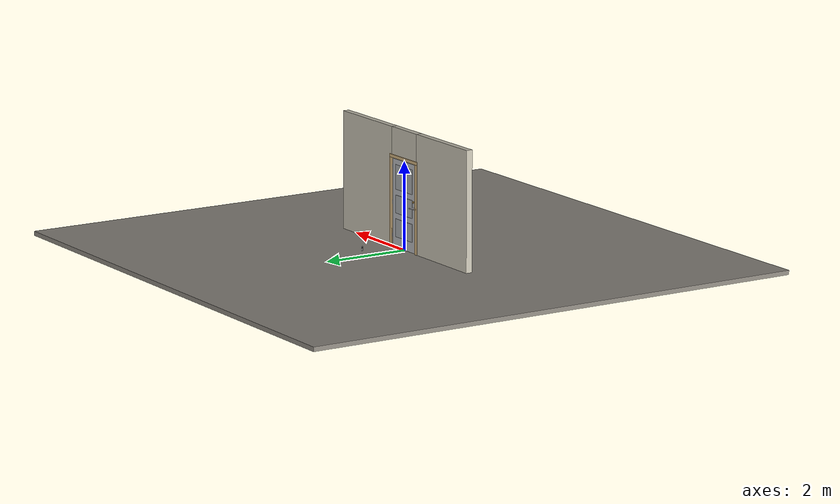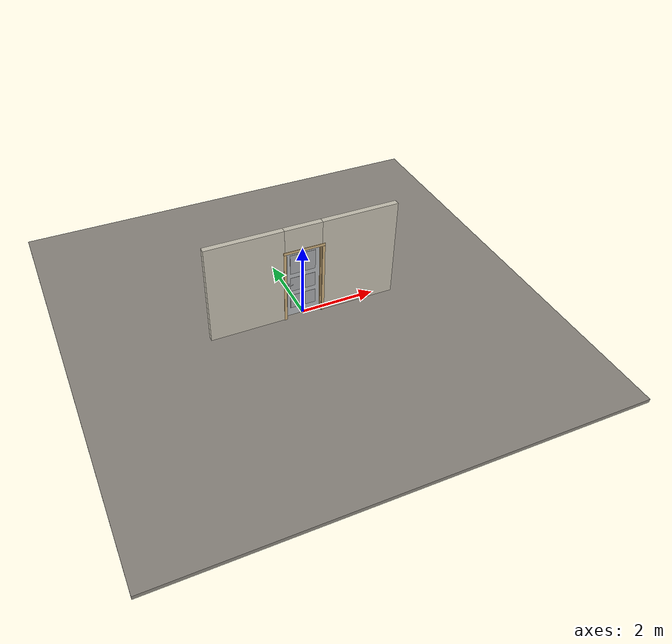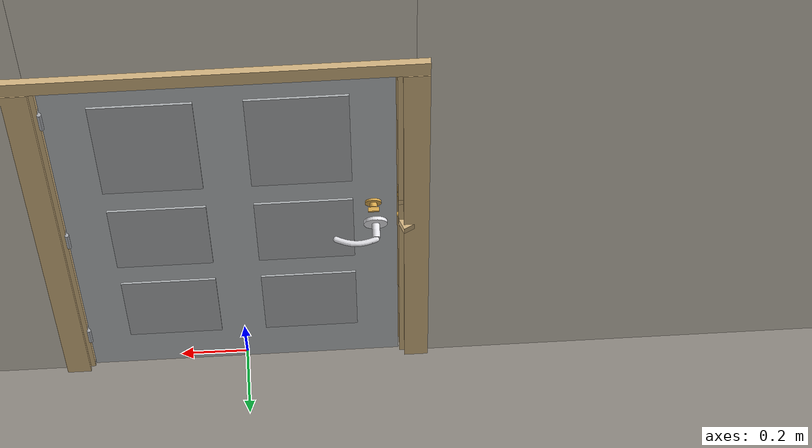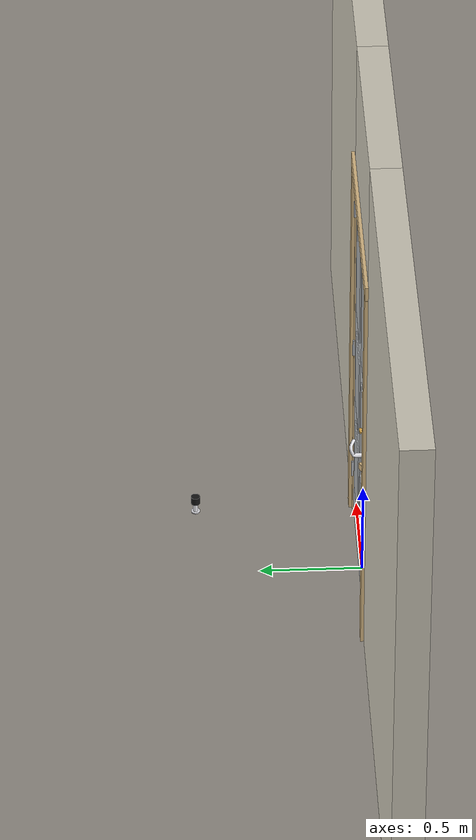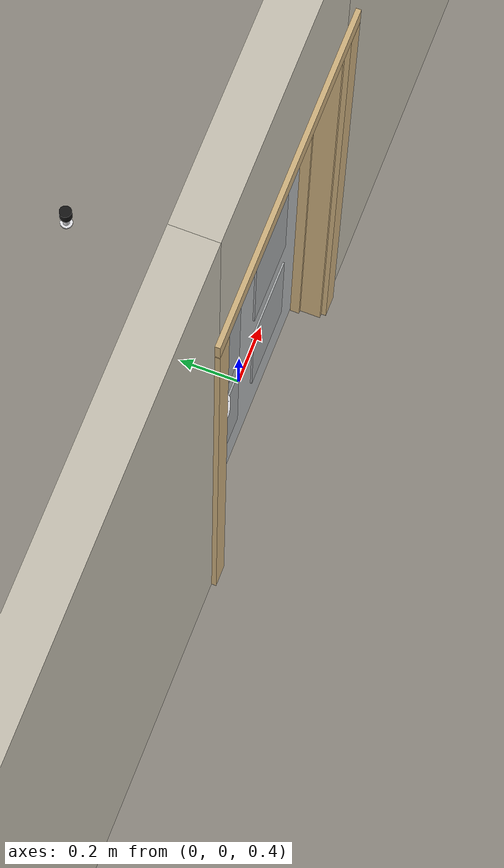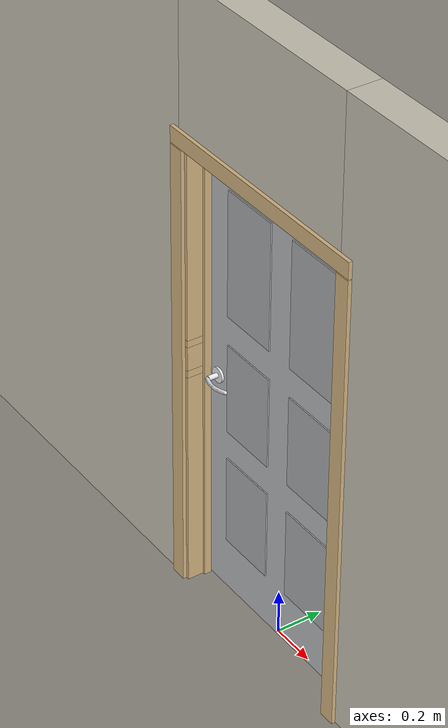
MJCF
<?xml version="1.0" ?>
<mujoco model="db0949_swing_single_full">
  <compiler angle="radian" meshdir="../../hardware" texturedir="../../textures" autolimits="true" inertiafromgeom="false"/>
  <option timestep="0.002" integrator="implicitfast" cone="elliptic" impratio="10" noslip_iterations="3">
    <flag multiccd="enable"/>
  </option>
  <size memory="16M"/>
  <default>
    <geom condim="4" solref="0.005 1" solimp="0.95 0.99 0.001"/>
    <joint solreflimit="0.005 1" solimplimit="0.95 0.99 0.001"/>
    <tendon solreflimit="0.005 1"/>
    <equality solref="0.002 1"/>
  </default>
  <visual>
    <headlight ambient="0.4 0.4 0.4" diffuse="0.7 0.7 0.7" specular="0.2 0.2 0.2"/>
    <quality shadowsize="4096"/>
    <map znear="0.01" zfar="60"/>
  </visual>
  <asset>
    <mesh name="hinge_96510cf394" file="hinge_96510cf394.obj"/>
    <mesh name="hinge_jamb_7fd4ca52b2" file="hinge_jamb_7fd4ca52b2.obj"/>
    <mesh name="lever_748f08efca" file="lever_748f08efca.obj"/>
    <mesh name="thumbturn_eb5c9899a3" file="thumbturn_eb5c9899a3.obj"/>
    <material name="mat_floor" rgba="0.55 0.53 0.5 1" specular="0.2" shininess="0.15" reflectance="0"/>
    <material name="mat_wall" rgba="0.78 0.76 0.7 1" specular="0.2" shininess="0.1" reflectance="0"/>
    <material name="mat_leaf" rgba="0.72 0.73 0.74 1" specular="0.2" shininess="0.49" reflectance="0"/>
    <material name="mat_leaf_panel" rgba="0.662 0.672 0.681 1" specular="0.2" shininess="0.49" reflectance="0"/>
    <material name="mat_hinge" rgba="0.65 0.66 0.68 1" specular="0.74" shininess="0.5" reflectance="0.36"/>
    <material name="mat_op_chrome" rgba="0.9 0.9 0.92 1" specular="0.8" shininess="0.9" reflectance="0.4"/>
    <material name="mat_trim" rgba="0.85 0.66 0.3 1" specular="0.8" shininess="0.75" reflectance="0.4"/>
    <material name="mat_bolt" rgba="0.85 0.66 0.3 1" specular="0.8" shininess="0.75" reflectance="0.4"/>
    <material name="mat_deadbolt" rgba="0.85 0.66 0.3 1" specular="0.8" shininess="0.75" reflectance="0.4"/>
    <material name="mat_frame" rgba="0.82 0.7 0.5 1" specular="0.2" shininess="0.45" reflectance="0"/>
    <material name="mat_bumper_stop" rgba="0.08 0.08 0.08 1" specular="0.2" shininess="0.1" reflectance="0"/>
    <material name="mat_stop_base" rgba="0.9 0.9 0.92 1" specular="0.8" shininess="0.9" reflectance="0.4"/>
    <texture name="skybox" type="skybox" builtin="gradient" rgb1="0.6 0.7 0.85" rgb2="0.9 0.92 0.95" width="256" height="256"/>
  </asset>
  <worldbody>
    <light name="sun" pos="1.5 -2.5 4" dir="-0.3 0.5 -0.8" directional="true" diffuse="0.8 0.8 0.8" specular="0.3 0.3 0.3" castshadow="true"/>
    <light name="fill" pos="-1.5 2.5 3" dir="0.3 -0.5 -0.7" directional="true" diffuse="0.35 0.35 0.4" castshadow="false"/>
    <camera name="robot_view" pos="0 -2.546125 1.698475" xyaxes="1 0 0 0 0.26963 0.962964" fovy="52"/>
    <camera name="far_view" pos="0 2.450125 1.698475" xyaxes="-1 0 0 0 -0.26963 0.962964" fovy="52"/>
    <camera name="iso" pos="-1.898575 -2.146425 2.098175" xyaxes="0.741536 -0.670913 0 0.242917 0.268487 0.932151" fovy="46"/>
    <camera name="detail_handle" pos="-0.1269 -0.8725 1.296" xyaxes="0.97561 0.219512 0 -0.070934 0.315262 0.94635" fovy="38"/>
    <geom name="floor" type="box" size="6 6 0.05" pos="0 0 -0.05" material="mat_floor" group="0" contype="1" conaffinity="1" friction="0.8 0.005 0.0001" density="2400"/>
    <geom name="wall_left" type="box" size="0.99525 0.0725 1.35" pos="-1.50475 -0.048 1.35" material="mat_wall" group="0" contype="1" conaffinity="1" friction="0.6 0.005 0.0001" density="800"/>
    <geom name="wall_right" type="box" size="1.01025 0.0725 1.35" pos="1.48975 -0.048 1.35" material="mat_wall" group="0" contype="1" conaffinity="1" friction="0.6 0.005 0.0001" density="800"/>
    <geom name="wall_header" type="box" size="0.4945 0.0725 0.3265" pos="-0.015 -0.048 2.3735" material="mat_wall" group="0" contype="1" conaffinity="1" friction="0.6 0.005 0.0001" density="800"/>
    <geom name="hinge_0_jamb" type="mesh" mesh="hinge_jamb_7fd4ca52b2" pos="0.4575 0.0245 0.259" quat="0 0 0 1" material="mat_hinge" group="1" contype="0" conaffinity="0" density="7850"/>
    <geom name="hinge_1_jamb" type="mesh" mesh="hinge_jamb_7fd4ca52b2" pos="0.4575 0.0245 1.0015" quat="0 0 0 1" material="mat_hinge" group="1" contype="0" conaffinity="0" density="7850"/>
    <geom name="hinge_2_jamb" type="mesh" mesh="hinge_jamb_7fd4ca52b2" pos="0.4575 0.0245 1.814" quat="0 0 0 1" material="mat_hinge" group="1" contype="0" conaffinity="0" density="7850"/>
    <geom name="leaf_deadbolt_strike_b" type="box" size="0.0155 0.003 0.0005" pos="-0.46 0 1.1375" quat="0.5 0.5 0.5 0.5" material="mat_deadbolt" group="1" contype="0" conaffinity="0" density="7800"/>
    <geom name="leaf_deadbolt_strike_l" type="box" size="0.003 0.0155 0.0005" pos="-0.46 -0.0125 1.156" quat="0.5 0.5 0.5 0.5" material="mat_deadbolt" group="1" contype="0" conaffinity="0" density="7800"/>
    <geom name="leaf_deadbolt_strike_t" type="box" size="0.0155 0.003 0.0005" pos="-0.46 0 1.1745" quat="0.5 0.5 0.5 0.5" material="mat_deadbolt" group="1" contype="0" conaffinity="0" density="7800"/>
    <geom name="leaf_deadbolt_strike_r" type="box" size="0.003 0.0155 0.0005" pos="-0.46 0.0125 1.156" quat="0.5 0.5 0.5 0.5" material="mat_deadbolt" group="1" contype="0" conaffinity="0" density="7800"/>
    <geom name="jamb_hinge" type="box" size="0.0095 0.0725 0.999" pos="0.47 -0.048 0.999" material="mat_frame" group="0" contype="1" conaffinity="1" friction="0.6 0.005 0.0001" density="400"/>
    <geom name="strike_1016_wall_n" type="box" size="0.0245 0.056325 0.0167" pos="-0.485 -0.064175 1.016" material="mat_frame" group="0" contype="1" conaffinity="1" friction="0.6 0.005 0.0001" density="400"/>
    <geom name="strike_1016_wall_p" type="box" size="0.0245 0.008 0.0167" pos="-0.485 0.01585 1.016" material="mat_frame" group="0" contype="1" conaffinity="1" friction="0.6 0.005 0.0001" density="400"/>
    <geom name="strike_1016_ramp" type="box" size="0.0245 0.01649 0.0167" pos="-0.489636 0.028673 1.016" quat="0.977148 0 0 0.212558" material="mat_frame" group="0" contype="1" conaffinity="1" friction="0.12 0.005 0.0001" density="400"/>
    <geom name="strike_1016_back" type="box" size="0.01615 0.00785 0.0167" pos="-0.49335 0 1.016" material="mat_frame" group="0" contype="1" conaffinity="1" friction="0.6 0.005 0.0001" density="400"/>
    <geom name="strike_1156_wall_n" type="box" size="0.0245 0.0555 0.0155" pos="-0.485 -0.065 1.156" material="mat_frame" group="0" contype="1" conaffinity="1" friction="0.6 0.005 0.0001" density="400"/>
    <geom name="strike_1156_wall_p" type="box" size="0.0245 0.0075 0.0155" pos="-0.485 0.017 1.156" material="mat_frame" group="0" contype="1" conaffinity="1" friction="0.6 0.005 0.0001" density="400"/>
    <geom name="strike_1156_back" type="box" size="0.0098 0.0095 0.0155" pos="-0.4997 0 1.156" material="mat_frame" group="0" contype="1" conaffinity="1" friction="0.6 0.005 0.0001" density="400"/>
    <geom name="jamb_strike_0" type="box" size="0.0245 0.0725 0.49965" pos="-0.485 -0.048 0.49965" material="mat_frame" group="0" contype="1" conaffinity="1" friction="0.6 0.005 0.0001" density="400"/>
    <geom name="jamb_strike_1" type="box" size="0.0245 0.0725 0.0539" pos="-0.485 -0.048 1.0866" material="mat_frame" group="0" contype="1" conaffinity="1" friction="0.6 0.005 0.0001" density="400"/>
    <geom name="jamb_strike_2" type="box" size="0.0245 0.0725 0.41325" pos="-0.485 -0.048 1.58475" material="mat_frame" group="0" contype="1" conaffinity="1" friction="0.6 0.005 0.0001" density="400"/>
    <geom name="jamb_head" type="box" size="0.4945 0.0725 0.0095" pos="-0.015 -0.048 2.0075" material="mat_frame" group="0" contype="1" conaffinity="1" friction="0.6 0.005 0.0001" density="400"/>
    <geom name="head_stud" type="box" size="0.4945 0.0725 0.015" pos="-0.015 -0.048 2.032" material="mat_wall" group="0" contype="1" conaffinity="1" friction="0.6 0.005 0.0001" density="500"/>
    <geom name="stop_hinge" type="box" size="0.0055 0.016 0.999" pos="0.455 -0.034 0.999" material="mat_frame" group="0" contype="1" conaffinity="1" friction="0.6 0.005 0.0001" density="400"/>
    <geom name="stop_strike" type="box" size="0.0055 0.016 0.999" pos="-0.455 -0.034 0.999" material="mat_frame" group="0" contype="1" conaffinity="1" friction="0.6 0.005 0.0001" density="400"/>
    <geom name="stop_head" type="box" size="0.4605 0.016 0.0055" pos="0 -0.034 1.9925" material="mat_frame" group="0" contype="1" conaffinity="1" friction="0.6 0.005 0.0001" density="400"/>
    <geom name="casing_l_n" type="box" size="0.035 0.008 1.0085" pos="-0.5095 -0.1285 0.999" material="mat_frame" group="2" contype="0" conaffinity="0" density="400"/>
    <geom name="casing_r_n" type="box" size="0.035 0.008 1.0085" pos="0.5095 -0.1285 0.999" material="mat_frame" group="2" contype="0" conaffinity="0" density="400"/>
    <geom name="casing_h_n" type="box" size="0.5445 0.008 0.035" pos="0 -0.1285 2.047" material="mat_frame" group="2" contype="0" conaffinity="0" density="400"/>
    <geom name="casing_l_p" type="box" size="0.035 0.008 1.0085" pos="-0.5095 0.0325 0.999" material="mat_frame" group="2" contype="0" conaffinity="0" density="400"/>
    <geom name="casing_r_p" type="box" size="0.035 0.008 1.0085" pos="0.5095 0.0325 0.999" material="mat_frame" group="2" contype="0" conaffinity="0" density="400"/>
    <geom name="casing_h_p" type="box" size="0.5445 0.008 0.035" pos="0 0.0325 2.047" material="mat_frame" group="2" contype="0" conaffinity="0" density="400"/>
    <geom name="door_stop_base" type="cylinder" size="0.022 0.003" pos="0.4735 0.8014 0.003" material="mat_stop_base" group="0" contype="1" conaffinity="1" friction="0.6 0.005 0.0001" density="7850"/>
    <geom name="door_stop_post" type="cylinder" size="0.012 0.0245" pos="0.4735 0.8014 0.0305" material="mat_stop_base" group="0" contype="1" conaffinity="1" friction="0.6 0.005 0.0001" density="7850"/>
    <geom name="door_stop_bumper" type="cylinder" size="0.022 0.02" pos="0.4735 0.8014 0.075" material="mat_bumper_stop" group="0" contype="1" conaffinity="1" friction="0.6 0.005 0.0001" density="1100"/>
    <site name="approach_point" pos="0 -1.5 0" quat="1 0 0 0" size="0.05" rgba="0.2 0.9 0.2 0.5" group="4"/>
    <site name="goal_point" pos="0 1.5 0" quat="1 0 0 0" size="0.05" rgba="0.2 0.9 0.2 0.5" group="4"/>
    <site name="door_plane_center" pos="0 0 0.999" quat="1 0 0 0" size="0.02" rgba="0.2 0.9 0.2 0.5" group="4"/>
    <body name="leaf" pos="0.4605 0 0">
      <inertial pos="-0.44703 0.000445 1.002432" mass="13.607802" quat="0.499564 0.500889 -0.499095 0.500449" diaginertia="1.007943694 4.491668289 5.49662086"/>
      <joint name="leaf_hinge" type="hinge" axis="0 0 -1" pos="-0.003 0.0245 0" limited="true" range="0 1.570796" damping="0.300186" frictionloss="1.262881" armature="0.02"/>
      <geom name="leaf_slab" type="box" size="0.457 0.0175 0.9925" pos="-0.46 0 1.0015" material="mat_leaf" group="0" contype="1" conaffinity="1" friction="0.35 0.005 0.0001" density="1"/>
      <geom name="leaf_panel_0_n" type="box" size="0.13573 0.003 0.20311" pos="-0.25927 -0.0205 0.45046" material="mat_leaf_panel" group="1" contype="0" conaffinity="0" density="1"/>
      <geom name="leaf_panel_0_p" type="box" size="0.13573 0.003 0.20311" pos="-0.25927 0.0205 0.45046" material="mat_leaf_panel" group="1" contype="0" conaffinity="0" density="1"/>
      <geom name="leaf_panel_1_n" type="box" size="0.13573 0.003 0.20311" pos="-0.66073 -0.0205 0.45046" material="mat_leaf_panel" group="1" contype="0" conaffinity="0" density="1"/>
      <geom name="leaf_panel_1_p" type="box" size="0.13573 0.003 0.20311" pos="-0.66073 0.0205 0.45046" material="mat_leaf_panel" group="1" contype="0" conaffinity="0" density="1"/>
      <geom name="leaf_panel_2_n" type="box" size="0.13573 0.003 0.20311" pos="-0.25927 -0.0205 0.98668" material="mat_leaf_panel" group="1" contype="0" conaffinity="0" density="1"/>
      <geom name="leaf_panel_2_p" type="box" size="0.13573 0.003 0.20311" pos="-0.25927 0.0205 0.98668" material="mat_leaf_panel" group="1" contype="0" conaffinity="0" density="1"/>
      <geom name="leaf_panel_3_n" type="box" size="0.13573 0.003 0.20311" pos="-0.66073 -0.0205 0.98668" material="mat_leaf_panel" group="1" contype="0" conaffinity="0" density="1"/>
      <geom name="leaf_panel_3_p" type="box" size="0.13573 0.003 0.20311" pos="-0.66073 0.0205 0.98668" material="mat_leaf_panel" group="1" contype="0" conaffinity="0" density="1"/>
      <geom name="leaf_panel_4_n" type="box" size="0.13573 0.003 0.27748" pos="-0.25927 -0.0205 1.59727" material="mat_leaf_panel" group="1" contype="0" conaffinity="0" density="1"/>
      <geom name="leaf_panel_4_p" type="box" size="0.13573 0.003 0.27748" pos="-0.25927 0.0205 1.59727" material="mat_leaf_panel" group="1" contype="0" conaffinity="0" density="1"/>
      <geom name="leaf_panel_5_n" type="box" size="0.13573 0.003 0.27748" pos="-0.66073 -0.0205 1.59727" material="mat_leaf_panel" group="1" contype="0" conaffinity="0" density="1"/>
      <geom name="leaf_panel_5_p" type="box" size="0.13573 0.003 0.27748" pos="-0.66073 0.0205 1.59727" material="mat_leaf_panel" group="1" contype="0" conaffinity="0" density="1"/>
      <geom name="hinge_0" type="mesh" mesh="hinge_96510cf394" pos="-0.003 0.0245 0.259" quat="0 0 0 1" material="mat_hinge" group="1" contype="0" conaffinity="0" density="7850"/>
      <geom name="hinge_1" type="mesh" mesh="hinge_96510cf394" pos="-0.003 0.0245 1.0015" quat="0 0 0 1" material="mat_hinge" group="1" contype="0" conaffinity="0" density="7850"/>
      <geom name="hinge_2" type="mesh" mesh="hinge_96510cf394" pos="-0.003 0.0245 1.814" quat="0 0 0 1" material="mat_hinge" group="1" contype="0" conaffinity="0" density="7850"/>
      <geom name="leaf_latch_bolt_faceplate" type="box" size="0.0006 0.01235 0.0267" pos="-0.9164 0 1.016" material="mat_bolt" group="1" contype="0" conaffinity="0" density="8500"/>
      <geom name="leaf_deadbolt_faceplate" type="box" size="0.0006 0.014 0.0245" pos="-0.9164 0 1.156" material="mat_deadbolt" group="1" contype="0" conaffinity="0" density="8500"/>
      <site name="leaf_edge_mid" pos="-0.917 0 0.9925" quat="1 0 0 0" size="0.02" rgba="0.2 0.9 0.2 0.5" group="4"/>
      <body name="leaf_handle" pos="-0.857 0 1.016">
        <inertial pos="0.024417 0 0" mass="0.839807" quat="0.707107 0 0 -0.707107" diaginertia="0.001182467 0.002815434 0.003861215"/>
        <joint name="leaf_handle_hinge" type="hinge" axis="0 1 0" limited="true" range="0 0.87" damping="0.205084" frictionloss="0.04" stiffness="0.9" springref="-0.444444" armature="0.01"/>
        <geom name="leaf_handle_spindle" type="cylinder" size="0.006 0.0255" pos="0 0 0" quat="0.707107 -0.707107 0 0" material="mat_op_chrome" group="1" contype="0" conaffinity="0" density="7850"/>
        <geom name="leaf_handle_lever_n" type="mesh" mesh="lever_748f08efca" pos="0 -0.0175 0" quat="0 0 -0.707107 0.707107" material="mat_op_chrome" group="1" contype="0" conaffinity="0" density="3000"/>
        <geom name="leaf_handle_lever_col_n" type="capsule" size="0.008 0.048" pos="0.056 -0.0725 0" quat="0.707107 0 0.707107 0" material="mat_op_chrome" group="3" contype="1" conaffinity="1" rgba="0.8 0.3 0.3 0.25" friction="0.7 0.01 0.0001" density="3000"/>
        <geom name="leaf_handle_hub_col_n" type="cylinder" size="0.012 0.022" pos="0 -0.0475 0" quat="0.707107 -0.707107 0 0" material="mat_op_chrome" group="3" contype="1" conaffinity="1" rgba="0.8 0.3 0.3 0.25" friction="0.6 0.005 0.0001" density="3000"/>
        <geom name="leaf_handle_lever_p" type="mesh" mesh="lever_748f08efca" pos="0 0.0175 0" quat="0 0 0.707107 0.707107" material="mat_op_chrome" group="1" contype="0" conaffinity="0" density="3000"/>
        <geom name="leaf_handle_lever_col_p" type="capsule" size="0.008 0.048" pos="0.056 0.0725 0" quat="0.707107 0 0.707107 0" material="mat_op_chrome" group="3" contype="1" conaffinity="1" rgba="0.8 0.3 0.3 0.25" friction="0.7 0.01 0.0001" density="3000"/>
        <geom name="leaf_handle_hub_col_p" type="cylinder" size="0.012 0.022" pos="0 0.0475 0" quat="0.707107 -0.707107 0 0" material="mat_op_chrome" group="3" contype="1" conaffinity="1" rgba="0.8 0.3 0.3 0.25" friction="0.6 0.005 0.0001" density="3000"/>
        <site name="leaf_handle_grip_n" pos="0.0896 -0.0725 0" quat="1 0 0 0" size="0.012" rgba="0.2 0.9 0.2 0.5" group="4"/>
        <site name="leaf_handle_grip_p" pos="0.0896 0.0725 0" quat="1 0 0 0" size="0.012" rgba="0.2 0.9 0.2 0.5" group="4"/>
      </body>
      <body name="leaf_latch_bolt" pos="-0.917 0 1.016">
        <inertial pos="0.00865 0 0" mass="0.041419" quat="0.92388 0.382683 0 0" diaginertia="0.000000798 0.000005598 0.000005598"/>
        <joint name="leaf_latch_bolt_slide" type="slide" axis="1 0 0" limited="true" range="0 0.0127" damping="2" frictionloss="0.3" stiffness="300" springref="-0.008333" armature="0.1"/>
        <geom name="leaf_latch_bolt_capsule" type="capsule" size="0.00635 0.015" pos="0.00865 0 0" quat="0.707107 0 -0.707107 0" material="mat_bolt" group="0" contype="1" conaffinity="1" friction="0.2 0.005 0.0001" density="8500"/>
      </body>
      <body name="leaf_deadbolt" pos="-0.917 0 1.156">
        <inertial pos="0.0277 0 0" mass="0.18836" quat="0 0 0.707107 0.707107" diaginertia="0.000013829 0.000052194 0.000057986"/>
        <joint name="leaf_deadbolt_slide" type="slide" axis="1 0 0" limited="true" range="0 0.0254" damping="5" frictionloss="1.5" armature="0.1" ref="0.0254"/>
        <geom name="leaf_deadbolt_box" type="box" size="0.0277 0.008 0.0125" pos="0.0277 0 0" material="mat_deadbolt" group="0" contype="1" conaffinity="1" friction="0.3 0.005 0.0001" density="8500"/>
      </body>
      <body name="leaf_deadbolt_thumbturn" pos="-0.852 0.0175 1.156">
        <inertial pos="0 0.012928 0" mass="0.178946" quat="0.000001 -0.707107 0.707107 -0.000001" diaginertia="0.000026045 0.000026215 0.000032438"/>
        <joint name="leaf_deadbolt_thumbturn_hinge" type="hinge" axis="0 -1 0" limited="true" range="0 1.5708" damping="0.05" frictionloss="0.3" armature="0.005" ref="1.5708"/>
        <geom name="leaf_deadbolt_thumbturn_mesh" type="mesh" mesh="thumbturn_eb5c9899a3" pos="0 0 0" quat="0.500001 -0.500001 0.499999 0.499999" material="mat_deadbolt" group="0" contype="1" conaffinity="1" friction="0.6 0.005 0.0001" density="7100"/>
        <geom name="leaf_deadbolt_thumbturn_col" type="box" size="0.006 0.012 0.016" pos="0 0.02 0" quat="0.707105 0 -0.707108 0" material="mat_deadbolt" group="3" contype="1" conaffinity="1" rgba="0.8 0.3 0.3 0.25" friction="0.6 0.005 0.0001" density="7100"/>
      </body>
    </body>
  </worldbody>
  <tendon>
    <fixed name="leaf_latch_bolt_coupling" limited="true" range="0 10">
      <joint joint="leaf_latch_bolt_slide" coef="1"/>
      <joint joint="leaf_handle_hinge" coef="-0.016076"/>
    </fixed>
  </tendon>
  <equality>
    <joint name="leaf_deadbolt_couple" joint1="leaf_deadbolt_slide" joint2="leaf_deadbolt_thumbturn_hinge" polycoef="0 0.01617 0 0 0" active="true"/>
  </equality>
  <contact>
    <exclude body1="leaf_deadbolt" body2="leaf_deadbolt_thumbturn"/>
  </contact>
  <sensor>
    <jointpos name="leaf_hinge_pos" joint="leaf_hinge"/>
    <jointvel name="leaf_hinge_vel" joint="leaf_hinge"/>
    <jointpos name="leaf_handle_hinge_pos" joint="leaf_handle_hinge"/>
    <jointvel name="leaf_handle_hinge_vel" joint="leaf_handle_hinge"/>
    <jointpos name="leaf_latch_bolt_slide_pos" joint="leaf_latch_bolt_slide"/>
    <jointvel name="leaf_latch_bolt_slide_vel" joint="leaf_latch_bolt_slide"/>
    <jointpos name="leaf_deadbolt_slide_pos" joint="leaf_deadbolt_slide"/>
    <jointvel name="leaf_deadbolt_slide_vel" joint="leaf_deadbolt_slide"/>
    <jointpos name="leaf_deadbolt_thumbturn_hinge_pos" joint="leaf_deadbolt_thumbturn_hinge"/>
    <jointvel name="leaf_deadbolt_thumbturn_hinge_vel" joint="leaf_deadbolt_thumbturn_hinge"/>
  </sensor>
</mujoco>
